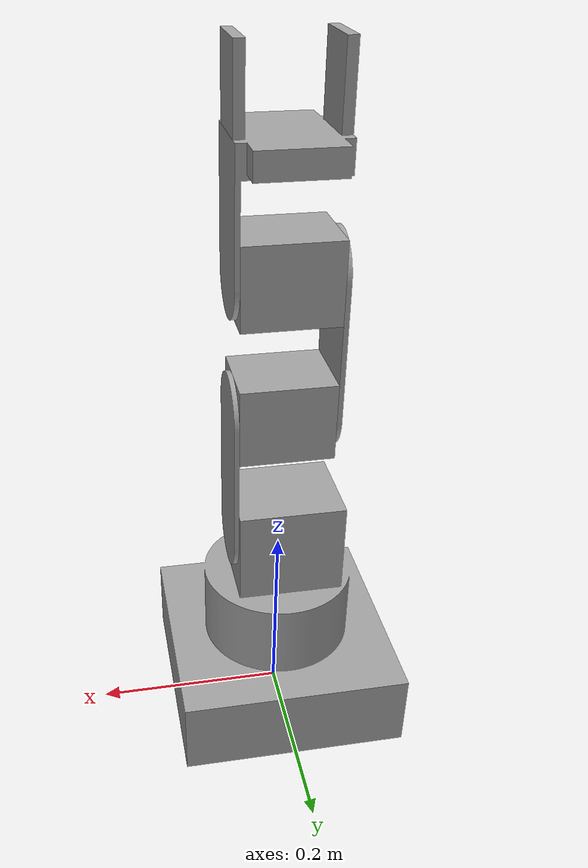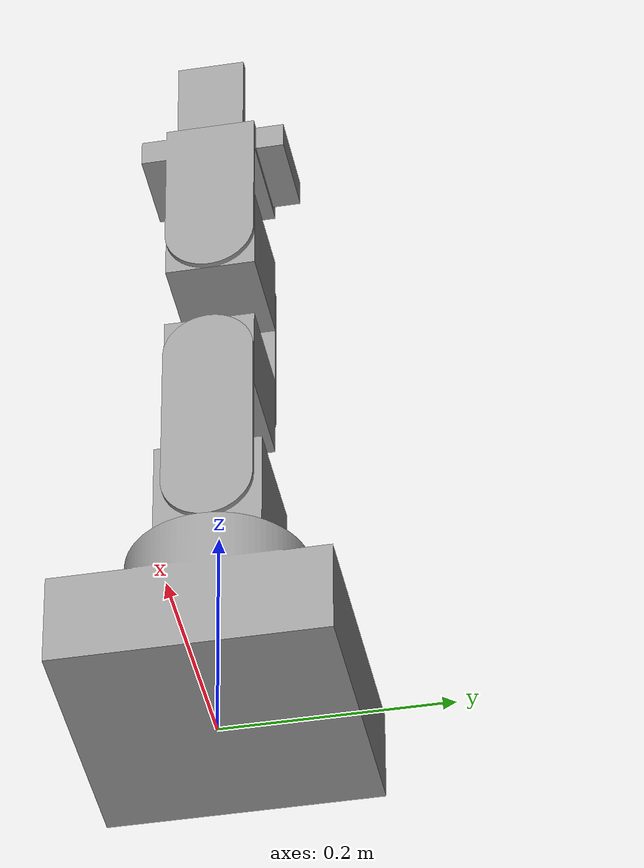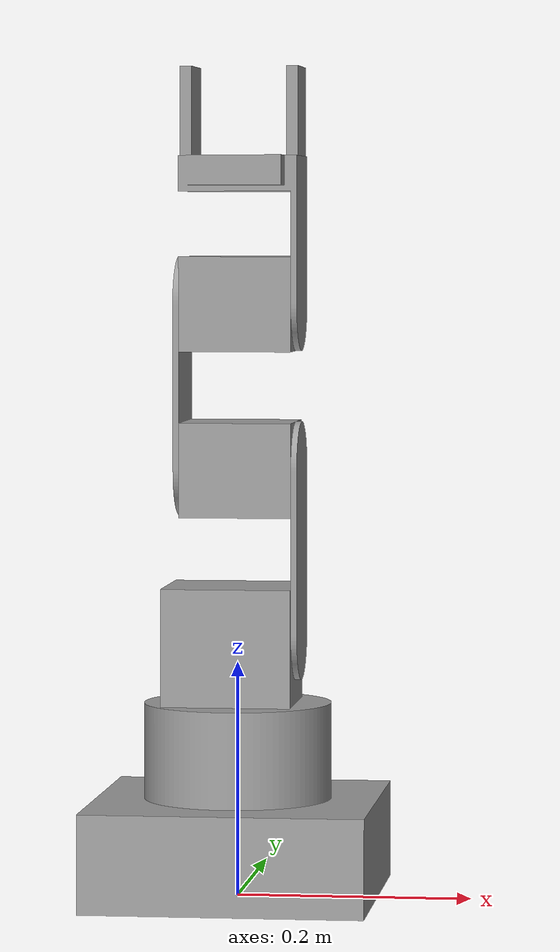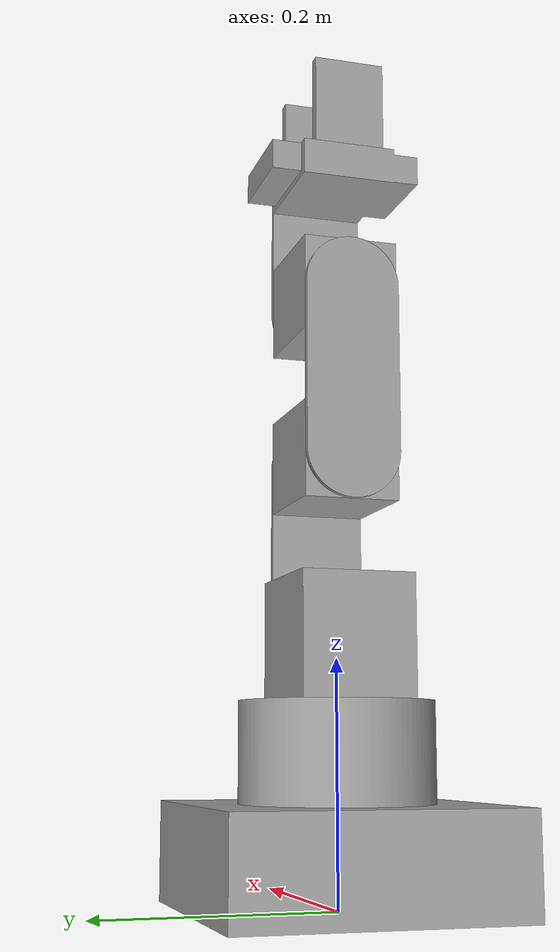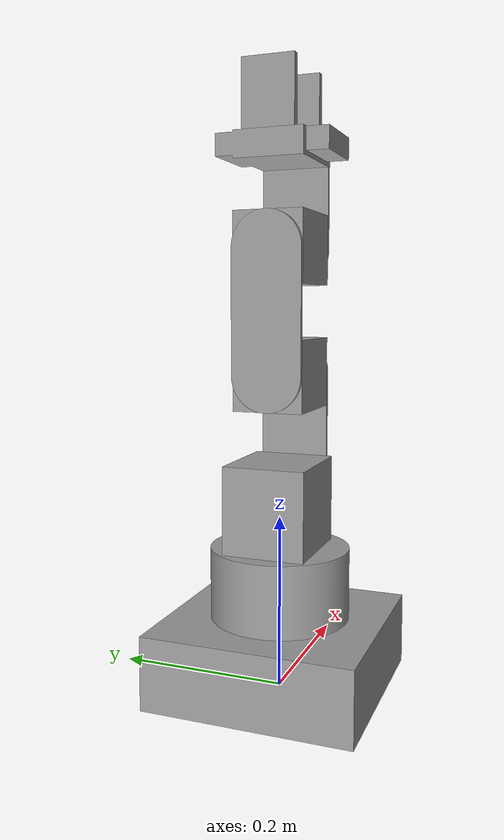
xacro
<?xml version="1.0"?>
<robot xmlns:xacro="http://www.ros.org/wiki/xacro" name="marav2ckptbest">

  <!-- Materials (shared across all assemblies) -->
  <material name="Steel">
    <color rgba="0.627 0.627 0.627 1.0"/>
  </material>

  <!-- Assembly includes -->
  <xacro:include filename="$(find marav2ckptbest_description)/urdf/assemblies/marav2ckptbest.urdf.xacro"/>

  <!-- Instantiate assemblies -->
  <xacro:marav2ckptbest prefix=""/>

</robot>

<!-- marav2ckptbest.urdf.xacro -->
<robot xmlns:xacro="http://www.ros.org/wiki/xacro" name="marav2ckptbest_macro">

  <xacro:macro name="marav2ckptbest" params="prefix">

    <!-- Links -->
    <link name="${prefix}base_link">
      <inertial>
        <origin xyz="0.000000 0.000000 0.063095" rpy="0 0 0"/>
        <mass value="50.923796"/>
        <inertia ixx="2.991036e-01" ixy="0.000000e+00" ixz="-6.702413e-12"
                 iyy="2.991036e-01" iyz="0.000000e+00" izz="4.060374e-01"/>
      </inertial>
      <visual>
        <origin xyz="0.000000 0.000000 0.000000" rpy="0.000000 0.000000 0.000000"/>
        <geometry>
          <mesh filename="package://marav2ckptbest_description/meshes/marav2ckptbest/base_link.dae" scale="1 1 1"/>
        </geometry>
        <material name="Steel"/>
      </visual>
      <collision>
        <origin xyz="0.000000 0.000000 0.000000" rpy="0.000000 0.000000 0.000000"/>
        <geometry>
          <mesh filename="package://marav2ckptbest_description/meshes/marav2ckptbest/base_link.dae" scale="1 1 1"/>
        </geometry>
      </collision>
    </link>

    <link name="${prefix}shoulder_link">
      <inertial>
        <origin xyz="-0.005000 0.000000 0.050000" rpy="0 0 0"/>
        <mass value="8.116900"/>
        <inertia ixx="1.274083e-02" ixy="0.000000e+00" ixz="0.000000e+00"
                 iyy="1.494862e-02" iyz="0.000000e+00" izz="1.416128e-02"/>
      </inertial>
      <visual>
        <origin xyz="0.000000 0.000000 -0.166000" rpy="0.000000 0.000000 0.000000"/>
        <geometry>
          <mesh filename="package://marav2ckptbest_description/meshes/marav2ckptbest/shoulder_link.dae" scale="1 1 1"/>
        </geometry>
        <material name="Steel"/>
      </visual>
      <collision>
        <origin xyz="0.000000 0.000000 -0.166000" rpy="0.000000 0.000000 0.000000"/>
        <geometry>
          <mesh filename="package://marav2ckptbest_description/meshes/marav2ckptbest/shoulder_link.dae" scale="1 1 1"/>
        </geometry>
      </collision>
    </link>

    <link name="${prefix}shoulder_arm">
      <inertial>
        <origin xyz="0.000000 0.070000 0.002500" rpy="0 0 0"/>
        <mass value="0.636892"/>
        <inertia ixx="2.233895e-03" ixy="0.000000e+00" ixz="0.000000e+00"
                 iyy="3.146970e-04" iyz="0.000000e+00" izz="2.545938e-03"/>
      </inertial>
      <visual>
        <origin xyz="0.000000 -0.226000 -0.050000" rpy="-1.570796 -1.570796 0.000000"/>
        <geometry>
          <mesh filename="package://marav2ckptbest_description/meshes/marav2ckptbest/shoulder_arm.dae" scale="1 1 1"/>
        </geometry>
        <material name="Steel"/>
      </visual>
      <collision>
        <origin xyz="0.000000 -0.226000 -0.050000" rpy="-1.570796 -1.570796 0.000000"/>
        <geometry>
          <mesh filename="package://marav2ckptbest_description/meshes/marav2ckptbest/shoulder_arm.dae" scale="1 1 1"/>
        </geometry>
      </collision>
    </link>

    <link name="${prefix}elbow_link">
      <inertial>
        <origin xyz="0.002500 0.000000 0.366000" rpy="0 0 0"/>
        <mass value="4.772800"/>
        <inertia ixx="5.090987e-03" ixy="0.000000e+00" ixz="0.000000e+00"
                 iyy="6.135037e-03" iyz="0.000000e+00" izz="6.135037e-03"/>
      </inertial>
      <visual>
        <origin xyz="0.000000 0.000000 0.000000" rpy="0.000000 0.000000 0.000000"/>
        <geometry>
          <mesh filename="package://marav2ckptbest_description/meshes/marav2ckptbest/elbow_link.dae" scale="1 1 1"/>
        </geometry>
        <material name="Steel"/>
      </visual>
      <collision>
        <origin xyz="0.000000 0.000000 0.000000" rpy="0.000000 0.000000 0.000000"/>
        <geometry>
          <mesh filename="package://marav2ckptbest_description/meshes/marav2ckptbest/elbow_link.dae" scale="1 1 1"/>
        </geometry>
      </collision>
    </link>

    <link name="${prefix}elbow_arm">
      <inertial>
        <origin xyz="0.000000 -0.070000 0.002500" rpy="0 0 0"/>
        <mass value="0.636892"/>
        <inertia ixx="2.233895e-03" ixy="0.000000e+00" ixz="0.000000e+00"
                 iyy="3.146970e-04" iyz="0.000000e+00" izz="2.545938e-03"/>
      </inertial>
      <visual>
        <origin xyz="0.000000 0.366000 -0.045000" rpy="1.570796 1.570796 0.000000"/>
        <geometry>
          <mesh filename="package://marav2ckptbest_description/meshes/marav2ckptbest/elbow_arm.dae" scale="1 1 1"/>
        </geometry>
        <material name="Steel"/>
      </visual>
      <collision>
        <origin xyz="0.000000 0.366000 -0.045000" rpy="1.570796 1.570796 0.000000"/>
        <geometry>
          <mesh filename="package://marav2ckptbest_description/meshes/marav2ckptbest/elbow_arm.dae" scale="1 1 1"/>
        </geometry>
      </collision>
    </link>

    <link name="${prefix}wrist_link">
      <inertial>
        <origin xyz="0.002500 0.000000 0.506000" rpy="0 0 0"/>
        <mass value="4.772800"/>
        <inertia ixx="5.090987e-03" ixy="0.000000e+00" ixz="0.000000e+00"
                 iyy="6.135037e-03" iyz="0.000000e+00" izz="6.135037e-03"/>
      </inertial>
      <visual>
        <origin xyz="0.000000 0.000000 0.000000" rpy="0.000000 0.000000 0.000000"/>
        <geometry>
          <mesh filename="package://marav2ckptbest_description/meshes/marav2ckptbest/wrist_link.dae" scale="1 1 1"/>
        </geometry>
        <material name="Steel"/>
      </visual>
      <collision>
        <origin xyz="0.000000 0.000000 0.000000" rpy="0.000000 0.000000 0.000000"/>
        <geometry>
          <mesh filename="package://marav2ckptbest_description/meshes/marav2ckptbest/wrist_link.dae" scale="1 1 1"/>
        </geometry>
      </collision>
    </link>

    <link name="${prefix}wrist_arm">
      <inertial>
        <origin xyz="0.000000 0.100474 -0.038850" rpy="0 0 0"/>
        <mass value="3.065946"/>
        <inertia ixx="5.669090e-03" ixy="0.000000e+00" ixz="0.000000e+00"
                 iyy="6.177043e-03" iyz="1.300933e-03" izz="6.307835e-03"/>
      </inertial>
      <visual>
        <origin xyz="0.000000 -0.506000 -0.050000" rpy="-1.570796 -1.570796 0.000000"/>
        <geometry>
          <mesh filename="package://marav2ckptbest_description/meshes/marav2ckptbest/wrist_arm.dae" scale="1 1 1"/>
        </geometry>
        <material name="Steel"/>
      </visual>
      <collision>
        <origin xyz="0.000000 -0.506000 -0.050000" rpy="-1.570796 -1.570796 0.000000"/>
        <geometry>
          <mesh filename="package://marav2ckptbest_description/meshes/marav2ckptbest/wrist_arm.dae" scale="1 1 1"/>
        </geometry>
      </collision>
    </link>

    <link name="${prefix}gripper_teeth">
      <inertial>
        <origin xyz="0.000000 0.000000 0.037500" rpy="0 0 0"/>
        <mass value="0.353250"/>
        <inertia ixx="2.715609e-04" ixy="0.000000e+00" ixz="0.000000e+00"
                 iyy="1.685297e-04" iyz="0.000000e+00" izz="1.089188e-04"/>
      </inertial>
      <visual>
        <origin xyz="0.040000 0.000000 -0.631000" rpy="0.000000 0.000000 0.000000"/>
        <geometry>
          <mesh filename="package://marav2ckptbest_description/meshes/marav2ckptbest/gripper_teeth.dae" scale="1 1 1"/>
        </geometry>
        <material name="Steel"/>
      </visual>
      <collision>
        <origin xyz="0.040000 0.000000 -0.631000" rpy="0.000000 0.000000 0.000000"/>
        <geometry>
          <mesh filename="package://marav2ckptbest_description/meshes/marav2ckptbest/gripper_teeth.dae" scale="1 1 1"/>
        </geometry>
      </collision>
    </link>

    <link name="${prefix}gripper_teeth2">
      <inertial>
        <origin xyz="0.000000 0.000000 0.037500" rpy="0 0 0"/>
        <mass value="0.353250"/>
        <inertia ixx="2.715609e-04" ixy="0.000000e+00" ixz="0.000000e+00"
                 iyy="1.685297e-04" iyz="0.000000e+00" izz="1.089187e-04"/>
      </inertial>
      <visual>
        <origin xyz="-0.050000 0.000000 -0.631000" rpy="0.000000 0.000000 0.000000"/>
        <geometry>
          <mesh filename="package://marav2ckptbest_description/meshes/marav2ckptbest/gripper_teeth2.dae" scale="1 1 1"/>
        </geometry>
        <material name="Steel"/>
      </visual>
      <collision>
        <origin xyz="-0.050000 0.000000 -0.631000" rpy="0.000000 0.000000 0.000000"/>
        <geometry>
          <mesh filename="package://marav2ckptbest_description/meshes/marav2ckptbest/gripper_teeth2.dae" scale="1 1 1"/>
        </geometry>
      </collision>
    </link>

    <!-- Joints (internal to assembly) -->
    <joint name="${prefix}Revolute_1" type="continuous">
      <parent link="${prefix}base_link"/>
      <child link="${prefix}shoulder_link"/>
      <origin xyz="0.000000 0.000000 0.166000" rpy="0.000000 0.000000 0.000000"/>
      <axis xyz="0.000000 0.000000 1.000000"/>
      <limit effort="100.0" velocity="1.00"/>
    </joint>

    <joint name="${prefix}Revolute_5" type="continuous">
      <parent link="${prefix}shoulder_link"/>
      <child link="${prefix}shoulder_arm"/>
      <origin xyz="0.050000 0.000000 0.060000" rpy="1.570796 0.000000 1.570796"/>
      <axis xyz="0.000000 0.000000 1.000000"/>
      <limit effort="100.0" velocity="1.00"/>
    </joint>

    <joint name="${prefix}Rigid_6" type="fixed">
      <parent link="${prefix}shoulder_arm"/>
      <child link="${prefix}elbow_link"/>
      <origin xyz="0.000000 -0.226000 -0.050000" rpy="-1.570796 -1.570796 0.000000"/>
    </joint>

    <joint name="${prefix}Revolute_7" type="continuous">
      <parent link="${prefix}elbow_link"/>
      <child link="${prefix}elbow_arm"/>
      <origin xyz="-0.045000 0.000000 0.366000" rpy="-1.570796 0.000000 1.570796"/>
      <axis xyz="0.000000 0.000000 1.000000"/>
      <limit effort="100.0" velocity="1.00"/>
    </joint>

    <joint name="${prefix}Rigid_8" type="fixed">
      <parent link="${prefix}elbow_arm"/>
      <child link="${prefix}wrist_link"/>
      <origin xyz="0.000000 0.366000 -0.045000" rpy="1.570796 1.570796 0.000000"/>
    </joint>

    <joint name="${prefix}Revolute_9" type="continuous">
      <parent link="${prefix}wrist_link"/>
      <child link="${prefix}wrist_arm"/>
      <origin xyz="0.050000 0.000000 0.506000" rpy="1.570796 0.000000 1.570796"/>
      <axis xyz="0.000000 0.000000 1.000000"/>
      <limit effort="100.0" velocity="1.00"/>
    </joint>

    <joint name="${prefix}Slider_10" type="prismatic">
      <parent link="${prefix}wrist_arm"/>
      <child link="${prefix}gripper_teeth"/>
      <origin xyz="0.000000 0.125000 -0.090000" rpy="-1.570796 -1.570796 0.000000"/>
      <axis xyz="1.000000 0.000000 0.000000"/>
      <limit lower="0.000000" upper="0.040000" effort="100.0" velocity="1.00"/>
    </joint>

    <joint name="${prefix}Slider_11" type="prismatic">
      <parent link="${prefix}wrist_arm"/>
      <child link="${prefix}gripper_teeth2"/>
      <origin xyz="0.000000 0.125000 0.000000" rpy="-1.570796 -1.570796 0.000000"/>
      <axis xyz="1.000000 0.000000 0.000000"/>
      <limit lower="-0.040000" upper="0.000000" effort="100.0" velocity="1.00"/>
    </joint>

    <!-- ROS 2 control: generated generic system -->
    <ros2_control name="${prefix}marav2ckptbest_system" type="system">
      <hardware>
        <plugin>mock_components/GenericSystem</plugin>
        <param name="cmd_topic">sim/marav2ckptbest_system/cmd</param>
        <param name="state_topic">sim/marav2ckptbest_system/state</param>
      </hardware>

      <joint name="${prefix}Revolute_1">
        <command_interface name="position"/>
        <command_interface name="velocity"/>
        <state_interface name="position">
          <param name="initial_value">0.0</param>
        </state_interface>
        <state_interface name="velocity"/>
        <state_interface name="effort"/>
      </joint>
      <joint name="${prefix}Revolute_5">
        <command_interface name="position"/>
        <command_interface name="velocity"/>
        <state_interface name="position">
          <param name="initial_value">0.0</param>
        </state_interface>
        <state_interface name="velocity"/>
        <state_interface name="effort"/>
      </joint>
      <joint name="${prefix}Revolute_7">
        <command_interface name="position"/>
        <command_interface name="velocity"/>
        <state_interface name="position">
          <param name="initial_value">0.0</param>
        </state_interface>
        <state_interface name="velocity"/>
        <state_interface name="effort"/>
      </joint>
      <joint name="${prefix}Revolute_9">
        <command_interface name="position"/>
        <command_interface name="velocity"/>
        <state_interface name="position">
          <param name="initial_value">0.0</param>
        </state_interface>
        <state_interface name="velocity"/>
        <state_interface name="effort"/>
      </joint>
      <joint name="${prefix}Slider_10">
        <command_interface name="position"/>
        <command_interface name="velocity"/>
        <state_interface name="position">
          <param name="initial_value">0.0</param>
        </state_interface>
        <state_interface name="velocity"/>
        <state_interface name="effort"/>
      </joint>
      <joint name="${prefix}Slider_11">
        <command_interface name="position"/>
        <command_interface name="velocity"/>
        <state_interface name="position">
          <param name="initial_value">0.0</param>
        </state_interface>
        <state_interface name="velocity"/>
        <state_interface name="effort"/>
      </joint>
    </ros2_control>

  </xacro:macro>

</robot>
